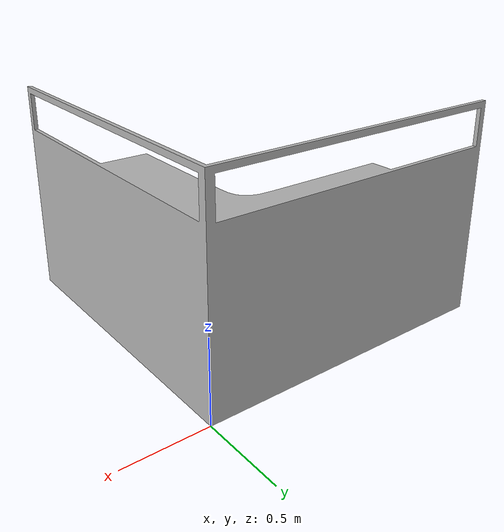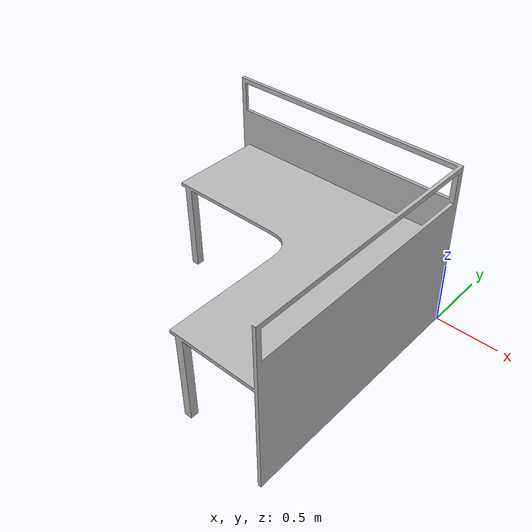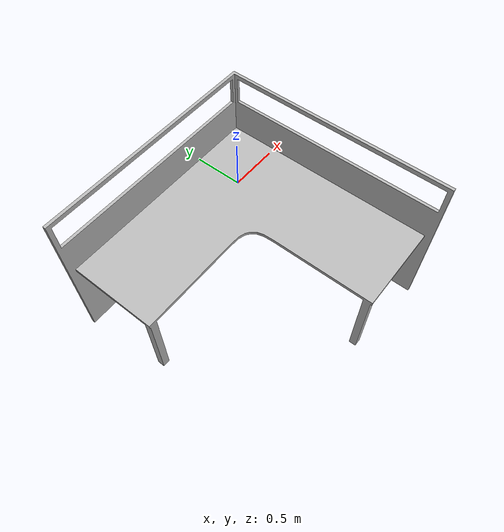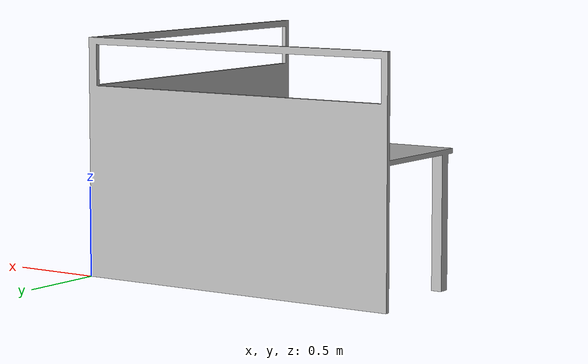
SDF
<?xml version="1.0" ?>
<sdf version="1.5">
  <model name="cubicle_corner">
    <static>true</static>
    <link name="link">
      <collision name="collision">
        <geometry>
          <mesh>
            <uri>model://cubicle_corner/meshes/cubicle_corner.obj</uri>
            <scale>0.01 0.01 0.01</scale>
          </mesh>
        </geometry>
      </collision>
      <visual name="visual">
        <geometry>
          <mesh>
            <uri>model://cubicle_corner/meshes/cubicle_corner.obj</uri>
            <scale>0.01 0.01 0.01</scale>
          </mesh>
        </geometry>
      </visual>
    </link>
  </model>
</sdf>
